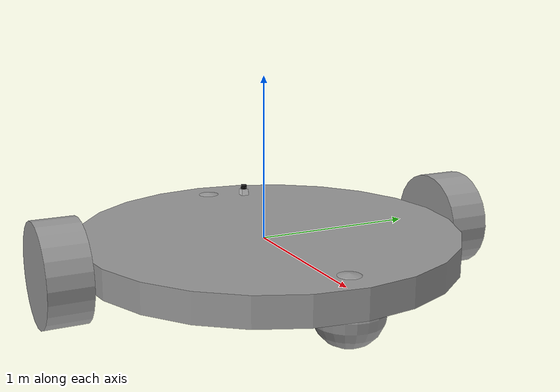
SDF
<?xml version='1.0'?>
<sdf version='1.6'>
  <model name='laser1'>
    <link name='link_1'>
      <pose frame=''>0.135242 -0.034248 0.011725 0 -0 0</pose>
      <inertial>
        <mass>1</mass>
        <inertia>
          <ixx>0.145833</ixx>
          <ixy>0</ixy>
          <ixz>0</ixz>
          <iyy>0.145833</iyy>
          <iyz>0</iyz>
          <izz>0.125</izz>
        </inertia>
        <pose frame=''>0 0 0 0 -0 0</pose>
      </inertial>
      <gravity>1</gravity>
      <self_collide>0</self_collide>
      <kinematic>0</kinematic>
      <visual name='visual'>
        <pose frame=''>0 0 0 0 -0 0</pose>
        <geometry>
          <cylinder>
            <radius>1.14657</radius>
            <length>0.175173</length>
          </cylinder>
        </geometry>
        <material>
          <lighting>1</lighting>
          <script>
            <uri>file://media/materials/scripts/gazebo.material</uri>
            <name>Gazebo/Grey</name>
          </script>
          <ambient>0.3 0.3 0.3 1</ambient>
          <diffuse>0.7 0.7 0.7 1</diffuse>
          <specular>0.01 0.01 0.01 1</specular>
          <emissive>0 0 0 1</emissive>
          <shader type='vertex'>
            <normal_map>__default__</normal_map>
          </shader>
        </material>
        <cast_shadows>1</cast_shadows>
        <transparency>0</transparency>
      </visual>
      <collision name='collision'>
        <laser_retro>0</laser_retro>
        <max_contacts>10</max_contacts>
        <pose frame=''>0 0 0 0 -0 0</pose>
        <geometry>
          <cylinder>
            <radius>1.14657</radius>
            <length>0.175173</length>
          </cylinder>
        </geometry>
        <surface>
          <friction>
            <ode>
              <mu>1</mu>
              <mu2>1</mu2>
              <fdir1>0 0 0</fdir1>
              <slip1>0</slip1>
              <slip2>0</slip2>
            </ode>
            <torsional>
              <coefficient>1</coefficient>
              <patch_radius>0</patch_radius>
              <surface_radius>0</surface_radius>
              <use_patch_radius>1</use_patch_radius>
              <ode>
                <slip>0</slip>
              </ode>
            </torsional>
          </friction>
          <bounce>
            <restitution_coefficient>0</restitution_coefficient>
            <threshold>1e+06</threshold>
          </bounce>
          <contact>
            <collide_without_contact>0</collide_without_contact>
            <collide_without_contact_bitmask>1</collide_without_contact_bitmask>
            <collide_bitmask>1</collide_bitmask>
            <ode>
              <soft_cfm>0</soft_cfm>
              <soft_erp>0.2</soft_erp>
              <kp>1e+13</kp>
              <kd>1</kd>
              <max_vel>0.01</max_vel>
              <min_depth>0</min_depth>
            </ode>
            <bullet>
              <split_impulse>1</split_impulse>
              <split_impulse_penetration_threshold>-0.01</split_impulse_penetration_threshold>
              <soft_cfm>0</soft_cfm>
              <soft_erp>0.2</soft_erp>
              <kp>1e+13</kp>
              <kd>1</kd>
            </bullet>
          </contact>
        </surface>
      </collision>
    </link>
    <link name='link_2'>
      <pose frame=''>0.135242 1.23735 0.011725 0 -0 0</pose>
      <inertial>
        <mass>1</mass>
        <inertia>
          <ixx>0.145833</ixx>
          <ixy>0</ixy>
          <ixz>0</ixz>
          <iyy>0.145833</iyy>
          <iyz>0</iyz>
          <izz>0.125</izz>
        </inertia>
        <pose frame=''>0 0 0 0 -0 0</pose>
      </inertial>
      <gravity>1</gravity>
      <self_collide>0</self_collide>
      <kinematic>0</kinematic>
      <visual name='visual'>
        <pose frame=''>0 0 0 1.5707 -0 0</pose>
        <geometry>
          <cylinder>
            <radius>0.3</radius>
            <length>0.25</length>
          </cylinder>
        </geometry>
        <material>
          <lighting>1</lighting>
          <script>
            <uri>file://media/materials/scripts/gazebo.material</uri>
            <name>Gazebo/Grey</name>
          </script>
          <ambient>0.3 0.3 0.3 1</ambient>
          <diffuse>0.7 0.7 0.7 1</diffuse>
          <specular>0.01 0.01 0.01 1</specular>
          <emissive>0 0 0 1</emissive>
          <shader type='vertex'>
            <normal_map>__default__</normal_map>
          </shader>
        </material>
        <cast_shadows>1</cast_shadows>
        <transparency>0</transparency>
      </visual>
      <collision name='collision'>
        <laser_retro>0</laser_retro>
        <max_contacts>10</max_contacts>
        <pose frame=''>0 0 0 1.5707 -0 0</pose>
        <geometry>
          <cylinder>
            <radius>0.3</radius>
            <length>0.25</length>
          </cylinder>
        </geometry>
        <surface>
          <friction>
            <ode>
              <mu>1</mu>
              <mu2>1</mu2>
              <fdir1>0 0 0</fdir1>
              <slip1>0</slip1>
              <slip2>0</slip2>
            </ode>
            <torsional>
              <coefficient>1</coefficient>
              <patch_radius>0</patch_radius>
              <surface_radius>0</surface_radius>
              <use_patch_radius>1</use_patch_radius>
              <ode>
                <slip>0</slip>
              </ode>
            </torsional>
          </friction>
          <bounce>
            <restitution_coefficient>0</restitution_coefficient>
            <threshold>1e+06</threshold>
          </bounce>
          <contact>
            <collide_without_contact>0</collide_without_contact>
            <collide_without_contact_bitmask>1</collide_without_contact_bitmask>
            <collide_bitmask>1</collide_bitmask>
            <ode>
              <soft_cfm>0</soft_cfm>
              <soft_erp>0.2</soft_erp>
              <kp>1e+13</kp>
              <kd>1</kd>
              <max_vel>0.01</max_vel>
              <min_depth>0</min_depth>
            </ode>
            <bullet>
              <split_impulse>1</split_impulse>
              <split_impulse_penetration_threshold>-0.01</split_impulse_penetration_threshold>
              <soft_cfm>0</soft_cfm>
              <soft_erp>0.2</soft_erp>
              <kp>1e+13</kp>
              <kd>1</kd>
            </bullet>
          </contact>
        </surface>
      </collision>
    </link>
    <link name='link_2_clone'>
      <pose frame=''>0.135242 -1.30585 0.011725 0 -0 0</pose>
      <inertial>
        <mass>1</mass>
        <inertia>
          <ixx>0.145833</ixx>
          <ixy>0</ixy>
          <ixz>0</ixz>
          <iyy>0.145833</iyy>
          <iyz>0</iyz>
          <izz>0.125</izz>
        </inertia>
        <pose frame=''>0 0 0 0 -0 0</pose>
      </inertial>
      <self_collide>0</self_collide>
      <kinematic>0</kinematic>
      <gravity>1</gravity>
      <visual name='visual'>
        <pose frame=''>0 0 0 1.5707 -0 0</pose>
        <geometry>
          <cylinder>
            <radius>0.3</radius>
            <length>0.25</length>
          </cylinder>
        </geometry>
        <material>
          <lighting>1</lighting>
          <script>
            <uri>file://media/materials/scripts/gazebo.material</uri>
            <name>Gazebo/Grey</name>
          </script>
          <ambient>0.3 0.3 0.3 1</ambient>
          <diffuse>0.7 0.7 0.7 1</diffuse>
          <specular>0.01 0.01 0.01 1</specular>
          <emissive>0 0 0 1</emissive>
          <shader type='vertex'>
            <normal_map>__default__</normal_map>
          </shader>
        </material>
        <cast_shadows>1</cast_shadows>
        <transparency>0</transparency>
      </visual>
      <collision name='collision'>
        <laser_retro>0</laser_retro>
        <max_contacts>10</max_contacts>
        <pose frame=''>0 0 0 1.5707 -0 0</pose>
        <geometry>
          <cylinder>
            <radius>0.3</radius>
            <length>0.25</length>
          </cylinder>
        </geometry>
        <surface>
          <friction>
            <ode>
              <mu>1</mu>
              <mu2>1</mu2>
              <fdir1>0 0 0</fdir1>
              <slip1>0</slip1>
              <slip2>0</slip2>
            </ode>
            <torsional>
              <coefficient>1</coefficient>
              <patch_radius>0</patch_radius>
              <surface_radius>0</surface_radius>
              <use_patch_radius>1</use_patch_radius>
              <ode>
                <slip>0</slip>
              </ode>
            </torsional>
          </friction>
          <bounce>
            <restitution_coefficient>0</restitution_coefficient>
            <threshold>1e+06</threshold>
          </bounce>
          <contact>
            <collide_without_contact>0</collide_without_contact>
            <collide_without_contact_bitmask>1</collide_without_contact_bitmask>
            <collide_bitmask>1</collide_bitmask>
            <ode>
              <soft_cfm>0</soft_cfm>
              <soft_erp>0.2</soft_erp>
              <kp>1e+13</kp>
              <kd>1</kd>
              <max_vel>0.01</max_vel>
              <min_depth>0</min_depth>
            </ode>
            <bullet>
              <split_impulse>1</split_impulse>
              <split_impulse_penetration_threshold>-0.01</split_impulse_penetration_threshold>
              <soft_cfm>0</soft_cfm>
              <soft_erp>0.2</soft_erp>
              <kp>1e+13</kp>
              <kd>1</kd>
            </bullet>
          </contact>
        </surface>
      </collision>
    </link>
    <link name='link_3'>
      <pose frame=''>1.08181 -0.034248 -0.088275 0 -0 0</pose>
      <inertial>
        <mass>0.0389408</mass>
        <inertia>
          <ixx>0.00044738</ixx>
          <ixy>0</ixy>
          <ixz>0</ixz>
          <iyy>0.00044738</iyy>
          <iyz>0</iyz>
          <izz>0.00044738</izz>
        </inertia>
        <pose frame=''>0 0 0 0 -0 0</pose>
      </inertial>
      <gravity>1</gravity>
      <self_collide>0</self_collide>
      <kinematic>0</kinematic>
      <visual name='visual'>
        <pose frame=''>0 0 0 0 -0 0</pose>
        <geometry>
          <sphere>
            <radius>0.2</radius>
          </sphere>
        </geometry>
        <material>
          <lighting>1</lighting>
          <script>
            <uri>file://media/materials/scripts/gazebo.material</uri>
            <name>Gazebo/Grey</name>
          </script>
          <ambient>0.3 0.3 0.3 1</ambient>
          <diffuse>0.7 0.7 0.7 1</diffuse>
          <specular>0.01 0.01 0.01 1</specular>
          <emissive>0 0 0 1</emissive>
          <shader type='vertex'>
            <normal_map>__default__</normal_map>
          </shader>
        </material>
        <cast_shadows>1</cast_shadows>
        <transparency>0</transparency>
      </visual>
      <collision name='collision'>
        <laser_retro>0</laser_retro>
        <max_contacts>10</max_contacts>
        <pose frame=''>0 0 0 0 -0 0</pose>
        <geometry>
          <sphere>
            <radius>0.2</radius>
          </sphere>
        </geometry>
        <surface>
          <friction>
            <ode>
              <mu>1</mu>
              <mu2>1</mu2>
              <fdir1>0 0 0</fdir1>
              <slip1>0</slip1>
              <slip2>0</slip2>
            </ode>
            <torsional>
              <coefficient>1</coefficient>
              <patch_radius>0</patch_radius>
              <surface_radius>0</surface_radius>
              <use_patch_radius>1</use_patch_radius>
              <ode>
                <slip>0</slip>
              </ode>
            </torsional>
          </friction>
          <bounce>
            <restitution_coefficient>0</restitution_coefficient>
            <threshold>1e+06</threshold>
          </bounce>
          <contact>
            <collide_without_contact>0</collide_without_contact>
            <collide_without_contact_bitmask>1</collide_without_contact_bitmask>
            <collide_bitmask>1</collide_bitmask>
            <ode>
              <soft_cfm>0</soft_cfm>
              <soft_erp>0.2</soft_erp>
              <kp>1e+13</kp>
              <kd>1</kd>
              <max_vel>0.01</max_vel>
              <min_depth>0</min_depth>
            </ode>
            <bullet>
              <split_impulse>1</split_impulse>
              <split_impulse_penetration_threshold>-0.01</split_impulse_penetration_threshold>
              <soft_cfm>0</soft_cfm>
              <soft_erp>0.2</soft_erp>
              <kp>1e+13</kp>
              <kd>1</kd>
            </bullet>
          </contact>
        </surface>
      </collision>
    </link>
    <link name='link_3_clone'>
      <pose frame=''>-0.811328 -0.034248 -0.088275 0 -0 0</pose>
      <inertial>
        <mass>0.0389408</mass>
        <inertia>
          <ixx>0.00044738</ixx>
          <ixy>0</ixy>
          <ixz>0</ixz>
          <iyy>0.00044738</iyy>
          <iyz>0</iyz>
          <izz>0.00044738</izz>
        </inertia>
        <pose frame=''>0 0 0 0 -0 0</pose>
      </inertial>
      <self_collide>0</self_collide>
      <kinematic>0</kinematic>
      <visual name='visual'>
        <pose frame=''>0 0 0 0 -0 0</pose>
        <geometry>
          <sphere>
            <radius>0.2</radius>
          </sphere>
        </geometry>
        <material>
          <lighting>1</lighting>
          <script>
            <uri>file://media/materials/scripts/gazebo.material</uri>
            <name>Gazebo/Grey</name>
          </script>
          <ambient>0.3 0.3 0.3 1</ambient>
          <diffuse>0.7 0.7 0.7 1</diffuse>
          <specular>0.01 0.01 0.01 1</specular>
          <emissive>0 0 0 1</emissive>
          <shader type='vertex'>
            <normal_map>__default__</normal_map>
          </shader>
        </material>
        <cast_shadows>1</cast_shadows>
        <transparency>0</transparency>
      </visual>
      <collision name='collision'>
        <laser_retro>0</laser_retro>
        <max_contacts>10</max_contacts>
        <pose frame=''>0 0 0 0 -0 0</pose>
        <geometry>
          <sphere>
            <radius>0.2</radius>
          </sphere>
        </geometry>
        <surface>
          <friction>
            <ode>
              <mu>1</mu>
              <mu2>1</mu2>
              <fdir1>0 0 0</fdir1>
              <slip1>0</slip1>
              <slip2>0</slip2>
            </ode>
            <torsional>
              <coefficient>1</coefficient>
              <patch_radius>0</patch_radius>
              <surface_radius>0</surface_radius>
              <use_patch_radius>1</use_patch_radius>
              <ode>
                <slip>0</slip>
              </ode>
            </torsional>
          </friction>
          <bounce>
            <restitution_coefficient>0</restitution_coefficient>
            <threshold>1e+06</threshold>
          </bounce>
          <contact>
            <collide_without_contact>0</collide_without_contact>
            <collide_without_contact_bitmask>1</collide_without_contact_bitmask>
            <collide_bitmask>1</collide_bitmask>
            <ode>
              <soft_cfm>0</soft_cfm>
              <soft_erp>0.2</soft_erp>
              <kp>1e+13</kp>
              <kd>1</kd>
              <max_vel>0.01</max_vel>
              <min_depth>0</min_depth>
            </ode>
            <bullet>
              <split_impulse>1</split_impulse>
              <split_impulse_penetration_threshold>-0.01</split_impulse_penetration_threshold>
              <soft_cfm>0</soft_cfm>
              <soft_erp>0.2</soft_erp>
              <kp>1e+13</kp>
              <kd>1</kd>
            </bullet>
          </contact>
        </surface>
      </collision>
    </link>
    <model name='hokuyo'>
      <link name='link'>
        <gravity>0</gravity>
        <inertial>
          <mass>0.1</mass>
        </inertial>
        <visual name='visual'>
          <geometry>
            <mesh>
              <uri>model://hokuyo/meshes/hokuyo.dae</uri>
            </mesh>
          </geometry>
        </visual>
        <sensor name='laser' type='ray'>
          <pose frame=''>0.01 0 0.03 0 -0 3.14</pose>
          <ray>
            <scan>
              <horizontal>
                <samples>10</samples>
                <resolution>1</resolution>
                <min_angle>-1.0</min_angle>
                <max_angle>1.0</max_angle>
              </horizontal>
            </scan>
            <range>
              <min>0.08</min>
              <max>3</max>
              <resolution>0.01</resolution>
            </range>
          </ray>
           <plugin name="gazebo_ros_head_hokuyo_controller" filename="libgazebo_ros_laser.so">
          <topicName>/mybot/laser/scan</topicName>
          <frameName>odom</frameName>
        </plugin>
          <always_on>1</always_on>
          <update_rate>30</update_rate>
          <visualize>1</visualize>
        </sensor>
      </link>
      <pose frame=''>-0.676207 0.171239 0.141378 0 -0 0</pose>
    </model>
    <joint name='link_1_JOINT_0' type='revolute'>
      <parent>link_1</parent>
      <child>link_2</child>
      <pose frame=''>0 0 0 0 -0 0</pose>
      <axis>
        <xyz>0 1 0</xyz>
        <use_parent_model_frame>0</use_parent_model_frame>
        <limit>
          <lower>-1.79769e+308</lower>
          <upper>1.79769e+308</upper>
          <effort>-1</effort>
          <velocity>-1</velocity>
        </limit>
        <dynamics>
          <spring_reference>0</spring_reference>
          <spring_stiffness>0</spring_stiffness>
          <damping>0</damping>
        </dynamics>
      </axis>
      <physics>
        <ode>
          <limit>
            <cfm>0</cfm>
            <erp>0.2</erp>
          </limit>
          <suspension>
            <cfm>0</cfm>
            <erp>0.2</erp>
          </suspension>
        </ode>
      </physics>
    </joint>
    <joint name='link_1_JOINT_1' type='revolute'>
      <parent>link_1</parent>
      <child>link_2_clone</child>
      <pose frame=''>0 0 0 0 -0 0</pose>
      <axis>
        <xyz>0 1 0</xyz>
        <use_parent_model_frame>0</use_parent_model_frame>
        <limit>
          <lower>-1.79769e+308</lower>
          <upper>1.79769e+308</upper>
          <effort>-1</effort>
          <velocity>-1</velocity>
        </limit>
        <dynamics>
          <spring_reference>0</spring_reference>
          <spring_stiffness>0</spring_stiffness>
          <damping>0</damping>
        </dynamics>
      </axis>
      <physics>
        <ode>
          <limit>
            <cfm>0</cfm>
            <erp>0.2</erp>
          </limit>
          <suspension>
            <cfm>0</cfm>
            <erp>0.2</erp>
          </suspension>
        </ode>
      </physics>
    </joint>
    <joint name='link_1_JOINT_2' type='ball'>
      <parent>link_1</parent>
      <child>link_3</child>
      <pose frame=''>0 0 0 0 -0 0</pose>
      <physics>
        <ode>
          <limit>
            <cfm>0</cfm>
            <erp>0.2</erp>
          </limit>
          <suspension>
            <cfm>0</cfm>
            <erp>0.2</erp>
          </suspension>
        </ode>
      </physics>
    </joint>
    <joint name='link_1_JOINT_3' type='ball'>
      <parent>link_1</parent>
      <child>link_3_clone</child>
      <pose frame=''>0 0 0 0 -0 0</pose>
      <physics>
        <ode>
          <limit>
            <cfm>0</cfm>
            <erp>0.2</erp>
          </limit>
          <suspension>
            <cfm>0</cfm>
            <erp>0.2</erp>
          </suspension>
        </ode>
      </physics>
    </joint>
    <joint name='link_1_JOINT_4' type='fixed'>
      <parent>link_1</parent>
      <child>hokuyo::link</child>
      <pose frame=''>0 0 0 0 -0 0</pose>
      <physics>
        <ode>
          <limit>
            <cfm>0</cfm>
            <erp>0.2</erp>
          </limit>
          <suspension>
            <cfm>0</cfm>
            <erp>0.2</erp>
          </suspension>
        </ode>
      </physics>
    </joint>
    <static>0</static>
    <allow_auto_disable>1</allow_auto_disable>

    <plugin name="differential_drive_controller" filename="libgazebo_ros_diff_drive.so">
      <legacyMode>false</legacyMode>
      <alwaysOn>true</alwaysOn>
      <updateRate>20</updateRate>
      <leftJoint>link_1_JOINT_1</leftJoint>
      <rightJoint>link_1_JOINT_0</rightJoint>
      <wheelSeparation>0.4</wheelSeparation>
      <wheelDiameter>0.1</wheelDiameter>
      <torque>20</torque>
      <commandTopic>cmd_vel</commandTopic>
      <odometryTopic>odom</odometryTopic>
      <odometryFrame>odom</odometryFrame>
      <robotBaseFrame>link_1</robotBaseFrame>
    </plugin>

  </model>
</sdf>
